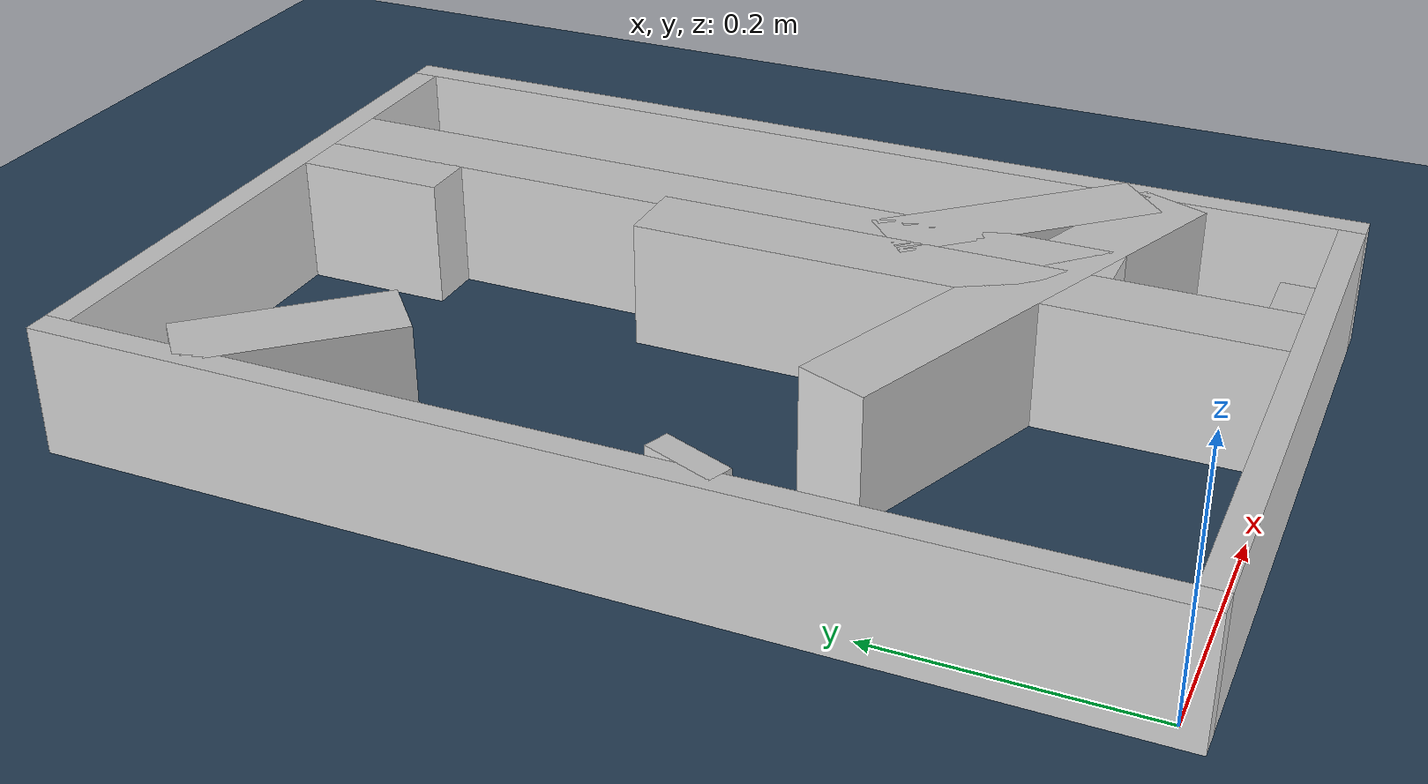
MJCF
<?xml version="1.0" ?>
<mujoco model="generated_real_template">
  <compiler angle="degree"/>
  <option timestep="0.002" integrator="implicitfast" iterations="100" cone="elliptic"/>
  <default>
    <geom density="1"/>
  </default>
  <asset>
    <texture builtin="gradient" height="3072" rgb1="0.3 0.5 0.7" rgb2="0 0 0" type="skybox" width="512"/>
    <texture builtin="checker" height="300" mark="edge" markrgb="0.8 0.8 0.8" name="groundplane" rgb1="0.2 0.3 0.4" rgb2="0.1 0.2 0.3" type="2d" width="300"/>
    <material name="groundplane" reflectance="0.2" texrepeat="5 5" texture="groundplane" texuniform="true"/>
  </asset>
  <worldbody>
    <light dir="0 0 -1" directional="true" pos="0 0 1.5"/>
    <geom name="floor" type="plane" condim="4" friction="0.5 0.005 0.001" material="groundplane" size="0 0 0.05"/>
    <body name="walls">
      <geom name="wall_boundary_left" type="box" condim="4" friction="1.0 0.005 0.0001" rgba="0.8 0.8 0.8 1" pos="-0.010000 0.387500 0.050000" euler="0 0 0.000000" size="0.010000 0.407500 0.050000"/>
      <geom name="wall_boundary_right" type="box" condim="4" friction="1.0 0.005 0.0001" rgba="0.8 0.8 0.8 1" pos="0.500000 0.387500 0.050000" euler="0 0 0.000000" size="0.010000 0.407500 0.050000"/>
      <geom name="wall_boundary_bottom" type="box" condim="4" friction="1.0 0.005 0.0001" rgba="0.8 0.8 0.8 1" pos="0.245000 -0.010000 0.050000" euler="0 0 0.000000" size="0.245000 0.010000 0.050000"/>
      <geom name="wall_boundary_top" type="box" condim="4" friction="1.0 0.005 0.0001" rgba="0.8 0.8 0.8 1" pos="0.245000 0.785000 0.050000" euler="0 0 0.000000" size="0.245000 0.010000 0.050000"/>
      <geom name="wall_inner_1_1" type="box" condim="4" friction="1.0 0.005 0.0001" rgba="0.8 0.8 0.8 1" pos="0.316031 0.242653 0.050000" euler="0 0 90.000000" size="0.242653 0.028500 0.050000"/>
      <geom name="wall_inner_1_2" type="box" condim="4" friction="1.0 0.005 0.0001" rgba="0.8 0.8 0.8 1" pos="0.316031 0.716140 0.050000" euler="0 0 90.000000" size="0.058860 0.028500 0.050000"/>
      <geom name="wall_inner_2_1" type="box" condim="4" friction="1.0 0.005 0.0001" rgba="0.8 0.8 0.8 1" pos="0.417372 0.226447 0.050000" euler="0 0 131.746583" size="0.107178 0.028500 0.050000"/>
      <geom name="wall_inner_2_2" type="box" condim="4" friction="1.0 0.005 0.0001" rgba="0.8 0.8 0.8 1" pos="0.054276 0.633311 0.050000" euler="0 0 131.746583" size="0.079616 0.028500 0.050000"/>
      <geom name="wall_inner_3_1" type="box" condim="4" friction="1.0 0.005 0.0001" rgba="0.8 0.8 0.8 1" pos="0.358316 0.012159 0.050000" euler="0 0 90.000000" size="0.012159 0.028500 0.050000"/>
      <geom name="wall_inner_3_2" type="box" condim="4" friction="1.0 0.005 0.0001" rgba="0.8 0.8 0.8 1" pos="0.358316 0.454667 0.050000" euler="0 0 90.000000" size="0.320333 0.028500 0.050000"/>
      <geom name="wall_inner_4_1" type="box" condim="4" friction="1.0 0.005 0.0001" rgba="0.8 0.8 0.8 1" pos="0.309265 0.194715 0.050000" euler="0 0 158.299883" size="0.194520 0.028500 0.050000"/>
      <geom name="wall_inner_4_2" type="box" condim="4" friction="1.0 0.005 0.0001" rgba="0.8 0.8 0.8 1" pos="0.009082 0.314173 0.050000" euler="0 0 158.299883" size="0.009775 0.028500 0.050000"/>
    </body>
  </worldbody>
</mujoco>
